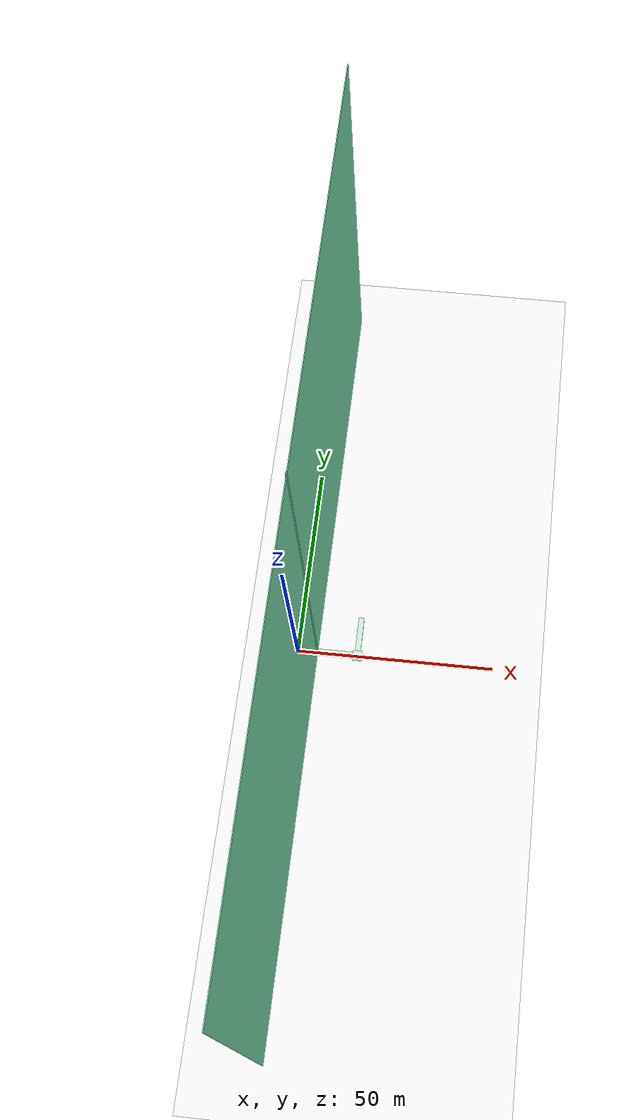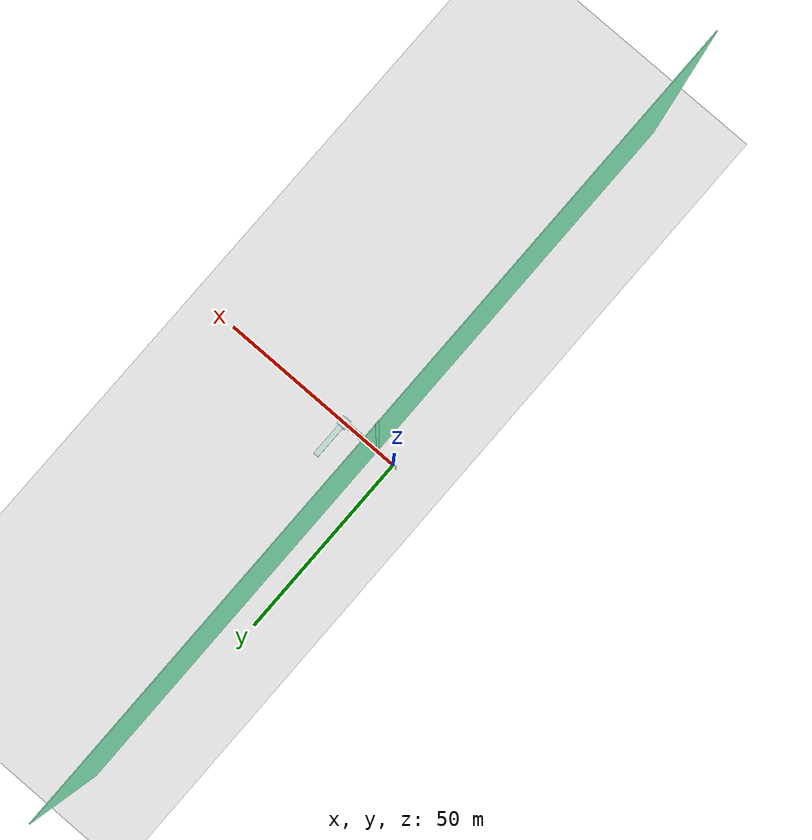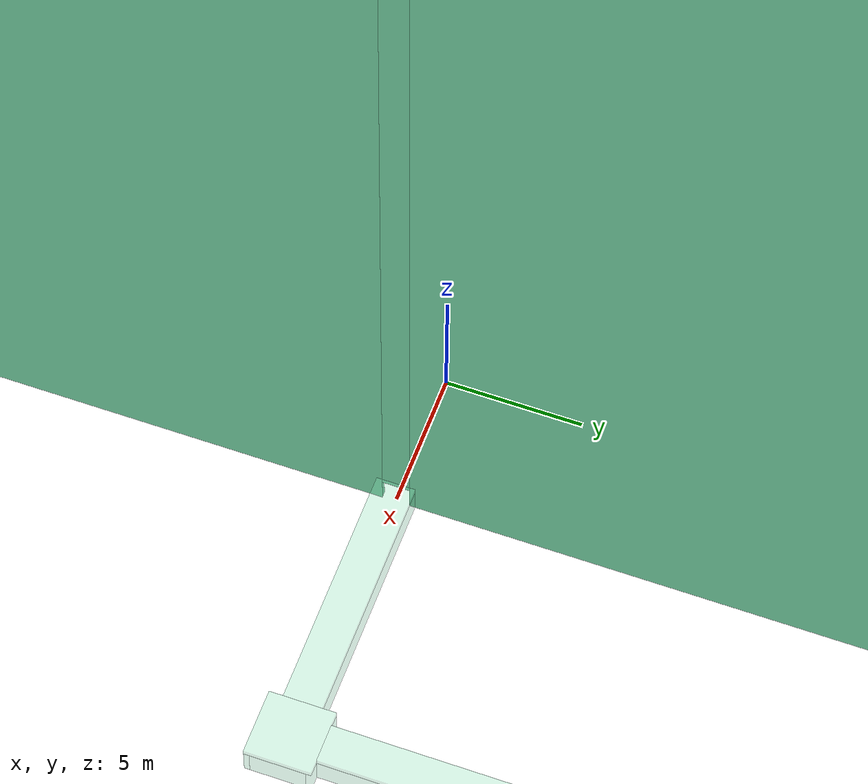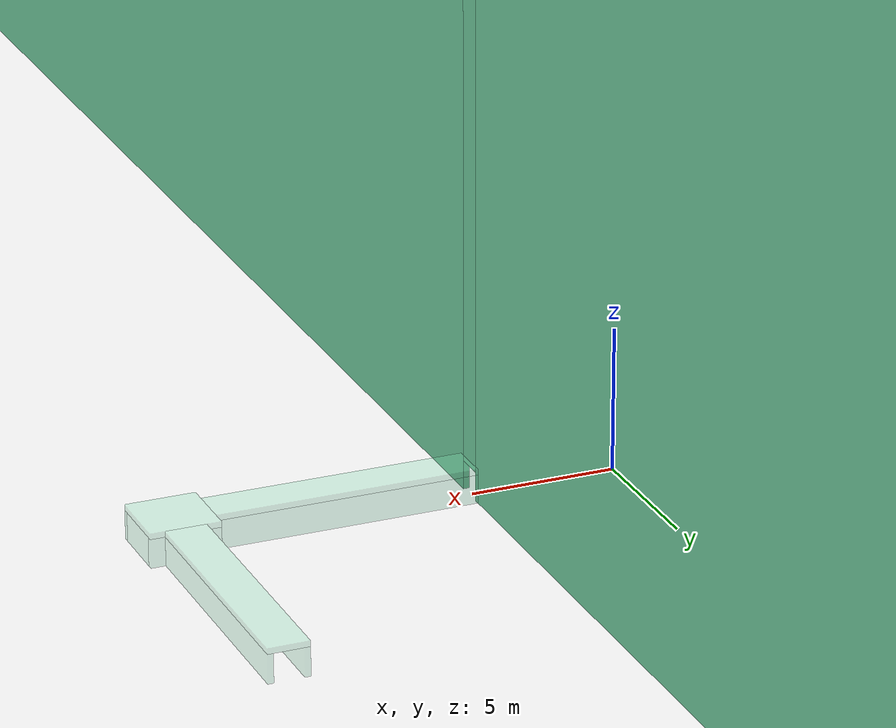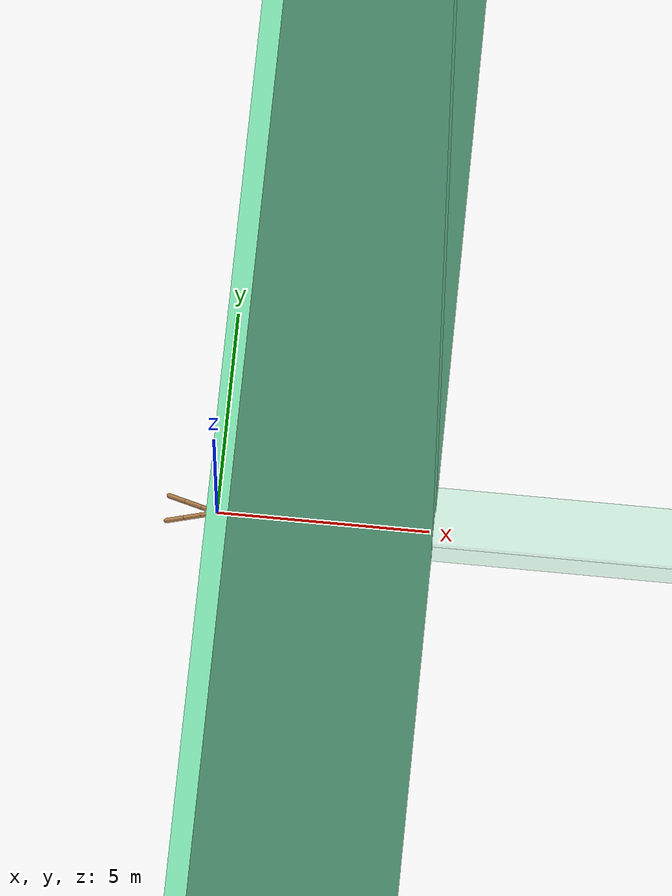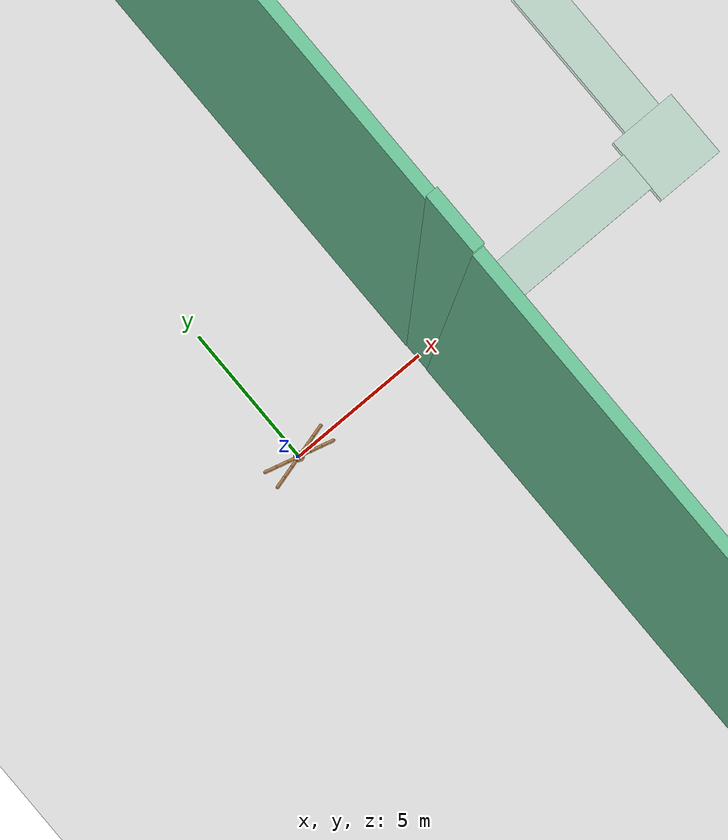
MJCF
<mujoco model="ant">
  <asset>
    <texture name="skybox" type="skybox" builtin="gradient" rgb1=".2 .3 .4" rgb2="0 0 0" width="800" height="800" mark="random" markrgb="1 1 1"/>
    <texture name="grid" type="2d" builtin="checker" rgb1=".2 .1 .2" rgb2=".3 .2 .3" width="300" height="300" mark="edge" markrgb=".3 .2 .3"/>
    <material name="grid" texture="grid" texrepeat="1 1" texuniform="true" reflectance=".2"/>
    <material name="self" rgba=".7 .5 .3 1"/>
  </asset>
  <visual>
    <headlight ambient=".4 .4 .4" diffuse=".8 .8 .8" specular="0.1 0.1 0.1"/>
    <map znear=".001"/>
    <quality shadowsize="16384"/>
  </visual>
  <compiler angle="degree" coordinate="global" inertiafromgeom="true"/>
  <option integrator="RK4" timestep="0.01"/>
  <default>
    <joint armature="1" damping="1" limited="true"/>
    <geom conaffinity="0" condim="3" density="1000" friction="1 0.5 0.5" margin="0.01" rgba=".7 .5 .3 1"/>
  </default>
  <worldbody>
    <light cutoff="100" diffuse="1 1 1" dir="0.3 0 -1.3" directional="true" exponent="1" pos="-30 0 130" specular=".1 .1 .1"/>
    <geom conaffinity="1" condim="3" name="floor" pos="0 0 0" rgba="1 1 1 1" size="200 200 .125" type="plane" material="grid"/>
    <geom conaffinity="1" condim="3" name="wall_box_1" type="box" pos="5 50.5 50" size="0.1 50 50" rgba="0.5 0.9 0.7 1" />
    <geom conaffinity="1" condim="3" name="wall_box_2" type="box" pos="5 -50.5 50" size="0.1 50 50" rgba="0.5 0.9 0.7 1" />
    <geom conaffinity="1" condim="3" name="wall_box_3" type="box" pos="5 0 51" size="0.1 0.5 50" rgba="0.5 0.9 0.7 1" />
    <geom conaffinity="1" condim="3" name="tunnel_box_1" type="box" pos="9.6 0 1.1" size="4.5 0.7 0.1" rgba="0.5 0.9 0.7 0.3" />
    <geom conaffinity="1" condim="3" name="tunnel_box_2" type="box" pos="9.6 0.6 0.5" size="4.5 0.1 0.5" rgba="0.5 0.9 0.7 0.3" />
    <geom conaffinity="1" condim="3" name="tunnel_box_3" type="box" pos="9.6 -0.6 0.5" size="4.5 0.1 0.5" rgba="0.5 0.9 0.7 0.3" />
    <geom conaffinity="1" condim="3" name="tunnel_box_4" type="box" pos="14.2 0.75 0.5" size="0.1 0.25 0.5" rgba="0.5 0.9 0.7 0.3" />
    <geom conaffinity="1" condim="3" name="tunnel_box_5" type="box" pos="14.2 -0.75 0.5" size="0.1 0.25 0.5" rgba="0.5 0.9 0.7 0.3" />
    <geom conaffinity="1" condim="3" name="tunnel_box_6" type="box" pos="15.3 -1.1 0.5" size="1.2 0.1 0.5" rgba="0.5 0.9 0.7 0.3" />
    <geom conaffinity="1" condim="3" name="tunnel_box_6_1" type="box" pos="16.4 0 0.5" size="0.1 1 0.5" rgba="0.5 0.9 0.7 0.3" />
    <geom conaffinity="1" condim="3" name="tunnel_box_7" type="box" pos="14.45 1.1 0.5" size="0.35 0.1 0.5" rgba="0.5 0.9 0.7 0.3" />
    <geom conaffinity="1" condim="3" name="tunnel_box_8" type="box" pos="16.15 1.1 0.5" size="0.35 0.1 0.5" rgba="0.5 0.9 0.7 0.3" />
    <geom conaffinity="1" condim="3" name="tunnel_box_9" type="box" pos="14.7 5.7 0.5" size="0.1 4.5 0.5" rgba="0.5 0.9 0.7 0.3" />
    <geom conaffinity="1" condim="3" name="tunnel_box_10" type="box" pos="15.9 5.7 0.5" size="0.1 4.5 0.5" rgba="0.5 0.9 0.7 0.3" />
    <geom conaffinity="1" condim="3" name="tunnel_box_11" type="box" pos="15.3 0 1.1" size="1.2 1.2 0.1" rgba="0.5 0.9 0.7 0.3" />
    <geom conaffinity="1" condim="3" name="tunnel_box_12" type="box" pos="15.3 5.7 1.1" size="0.7 4.5 0.1" rgba="0.5 0.9 0.7 0.3" />
    <body name="0" pos="0 0 0">
      <camera name="track" mode="trackcom" pos="0 -5 0.3" xyaxes="1 0 0 0 0 1"/>
      <geom pos="0 0 0" size="0.18" type="sphere"/>
      <joint armature="0" damping="0" limited="false" margin="0.01" name="root" pos="0 0 0" type="free"/>
      <body name="1" pos="0 0 0">
        <joint axis="-0.258819 0.965926 0" name="1_joint" pos="0 0 0" range="-45 45" type="hinge"/>
        <geom fromto="0 0 0 0.38637 0.103528 0" size="0.06" type="capsule"/>
        <body name="11" pos="0.38637 0.103528 0">
          <joint axis="-0.258819 -0.965926 0" name="11_joint" pos="0.38637 0.103528 0" range="-45 45" type="hinge"/>
          <geom fromto="0.38637 0.103528 0 0.772741 0.207055 0" size="0.06" type="capsule"/>
          <body name="111" pos="0.772741 0.207055 0">
            <joint axis="-0.258819 -0.965926 0" name="111_joint" pos="0.772741 0.207055 0" range="-45 45" type="hinge"/>
            <geom fromto="0.772741 0.207055 0 1.15911 0.310583 0" size="0.06" type="capsule"/>
          </body>
        </body>
      </body>
      <body name="2" pos="0 0 0">
        <joint axis="0.258819 0.965926 0" name="2_joint" pos="0 0 0" range="-45 45" type="hinge"/>
        <geom fromto="0 0 0 0.38637 -0.103528 0" size="0.06" type="capsule"/>
        <body name="12" pos="0.38637 -0.103528 0">
          <joint axis="0.258819 0.965926 0" name="12_joint" pos="0.38637 -0.103528 0" range="-45 45" type="hinge"/>
          <geom fromto="0.38637 -0.103528 0 0.772741 -0.207055 0" size="0.06" type="capsule"/>
          <body name="112" pos="0.772741 -0.207055 0">
            <joint axis="0.258819 0.965926 0" name="112_joint" pos="0.772741 -0.207055 0" range="-45 45" type="hinge"/>
            <geom fromto="0.772741 -0.207055 0 1.15911 -0.310583 0" size="0.06" type="capsule"/>
          </body>
        </body>
      </body>
      <body name="3" pos="0 0 0">
        <joint axis="0.258819 0.965926 0" name="3_joint" pos="0 0 0" range="-45 45" type="hinge"/>
        <geom fromto="0 0 0 -0.38637 0.103528 0" size="0.06" type="capsule"/>
        <body name="13" pos="-0.38637 0.103528 0">
          <joint axis="0.258819 -0.965926 0" name="13_joint" pos="-0.38637 0.103528 0" range="-45 45" type="hinge"/>
          <geom fromto="-0.38637 0.103528 0 -0.772741 0.207055 0" size="0.06" type="capsule"/>
          <body name="113" pos="-0.772741 0.207055 0">
            <joint axis="0.258819 -0.965926 0" name="113_joint" pos="-0.772741 0.207055 0" range="-45 45" type="hinge"/>
            <geom fromto="-0.772741 0.207055 0 -1.15911 0.310583 0" size="0.06" type="capsule"/>
          </body>
        </body>
      </body>
      <body name="4" pos="0 0 0">
        <joint axis="-0.258819 0.965926 0" name="4_joint" pos="0 0 0" range="-45 45" type="hinge"/>
        <geom fromto="0 0 0 -0.38637 -0.103528 0" size="0.06" type="capsule"/>
        <body name="14" pos="-0.38637 -0.103528 0">
          <joint axis="-0.258819 -0.965926 0" name="14_joint" pos="-0.38637 -0.103528 0" range="-45 45" type="hinge"/>
          <geom fromto="-0.38637 -0.103528 0 -0.772741 -0.207055 0" size="0.06" type="capsule"/>
          <body name="114" pos="-0.772741 -0.207055 0">
            <joint axis="-0.258819 -0.965926 0" name="114_joint" pos="-0.772741 -0.207055 0" range="-45 45" type="hinge"/>
            <geom fromto="-0.772741 -0.207055 0 -1.15911 -0.310583 0" size="0.06" type="capsule"/>
          </body>
        </body>
      </body>
    </body>
  </worldbody>
  <actuator>
    <motor ctrllimited="true" ctrlrange="-1.0 1.0" joint="1_joint" gear="300" name="1_joint"/>
    <motor ctrllimited="true" ctrlrange="-1.0 1.0" joint="2_joint" gear="300" name="2_joint"/>
    <motor ctrllimited="true" ctrlrange="-1.0 1.0" joint="3_joint" gear="300" name="3_joint"/>
    <motor ctrllimited="true" ctrlrange="-1.0 1.0" joint="4_joint" gear="300" name="4_joint"/>
    <motor ctrllimited="true" ctrlrange="-1.0 1.0" joint="11_joint" gear="300" name="11_joint"/>
    <motor ctrllimited="true" ctrlrange="-1.0 1.0" joint="12_joint" gear="300" name="12_joint"/>
    <motor ctrllimited="true" ctrlrange="-1.0 1.0" joint="13_joint" gear="300" name="13_joint"/>
    <motor ctrllimited="true" ctrlrange="-1.0 1.0" joint="14_joint" gear="300" name="14_joint"/>
  </actuator>
</mujoco>
